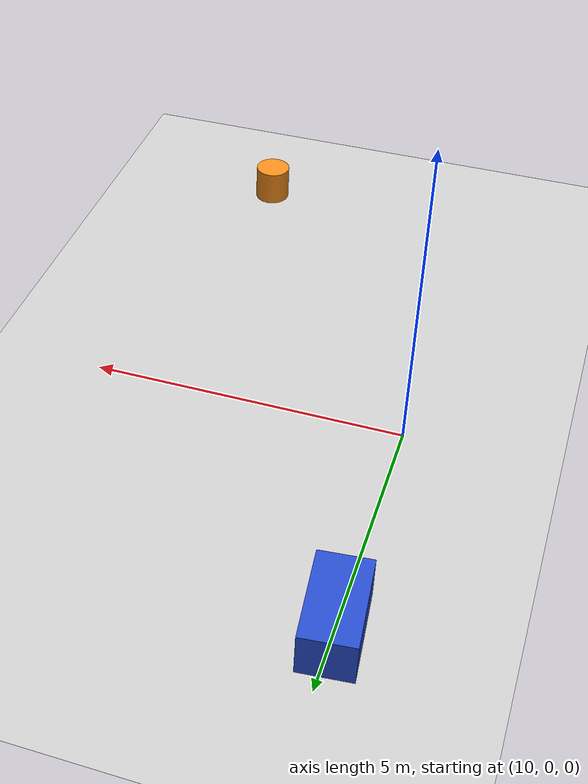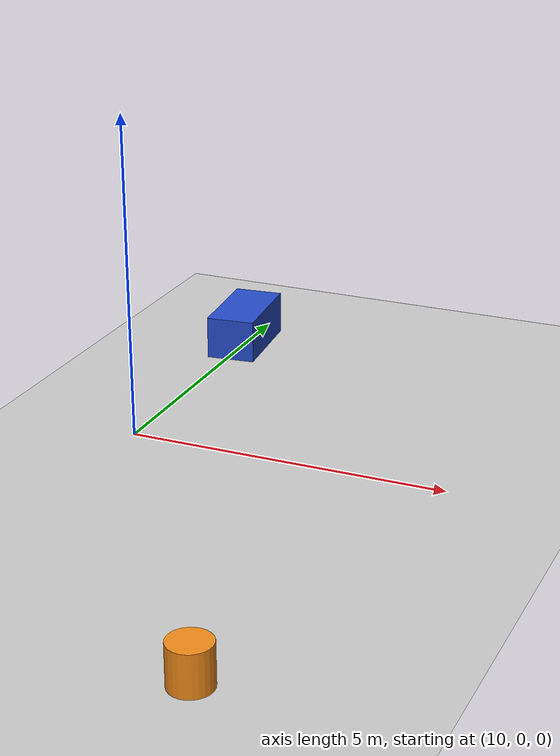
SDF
<sdf version="1.7">
 <world name="sim_world">
  <model name="ground_plane">
   <static>1</static>
   <link name="link">
    <collision name="collision">
     <geometry><plane><normal>0 0 1</normal><size>100 100</size></plane></geometry>
     <surface>
      <contact><collide_bitmask>65535</collide_bitmask></contact>
      <friction><ode><mu>100</mu><mu2>50</mu2></ode></friction>
     </surface>
    </collision>
    <visual name="visual">
     <cast_shadows>0</cast_shadows>
     <geometry><plane><normal>0 0 1</normal><size>100 100</size></plane></geometry>
     <material>
      <script><uri>file://media/materials/scripts/gazebo.material</uri><name>Gazebo/Grey</name></script>
     </material>
    </visual>
   </link>
  </model>
  <model name="box_flat2">
   <static>1</static>
   <pose>10 4 0.35 0 -0 0.1</pose>
   <link name="link">
    <collision name="collision"><geometry><box><size>0.8 1.5 0.7</size></box></geometry></collision>
    <visual name="visual">
     <geometry><box><size>0.8 1.5 0.7</size></box></geometry>
     <material>
      <script><uri>file://media/materials/scripts/gazebo.material</uri><name>Gazebo/Blue</name></script>
     </material>
    </visual>
   </link>
  </model>
  <model name="cyl_scat2">
   <static>1</static>
   <pose>13.8714 -5.80165 0.3 0 -0 0</pose>
   <link name="link">
    <collision name="collision">
     <geometry><cylinder><radius>0.3</radius><length>0.6</length></cylinder></geometry>
    </collision>
    <visual name="visual">
     <geometry><cylinder><radius>0.3</radius><length>0.6</length></cylinder></geometry>
     <material>
      <script><uri>file://media/materials/scripts/gazebo.material</uri><name>Gazebo/Orange</name></script>
     </material>
    </visual>
   </link>
  </model>
 </world>
</sdf>
